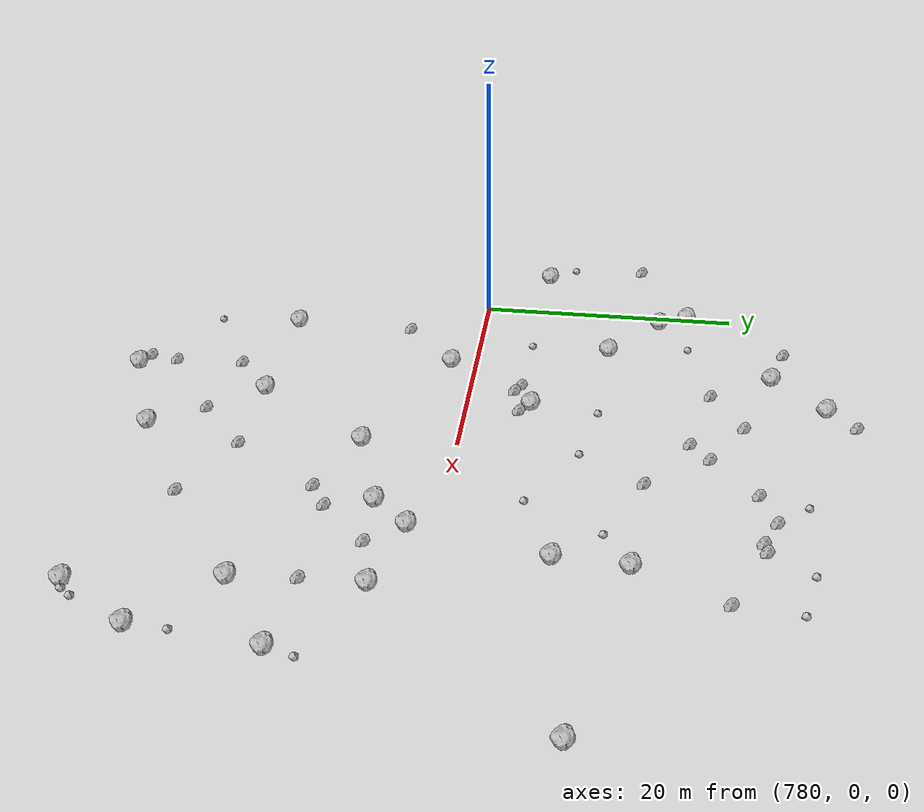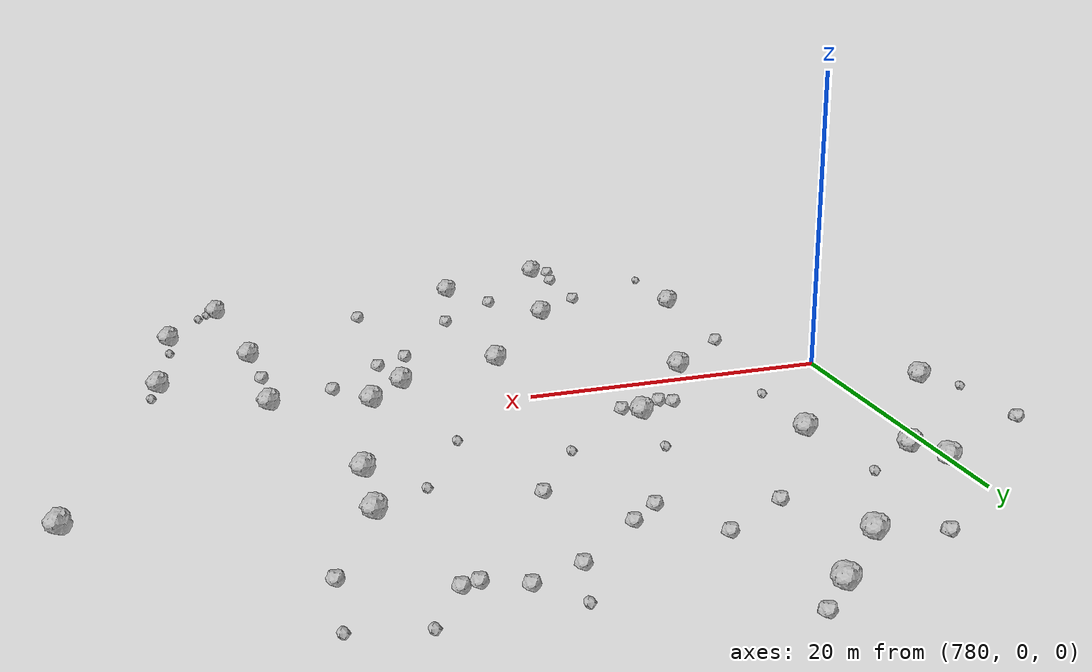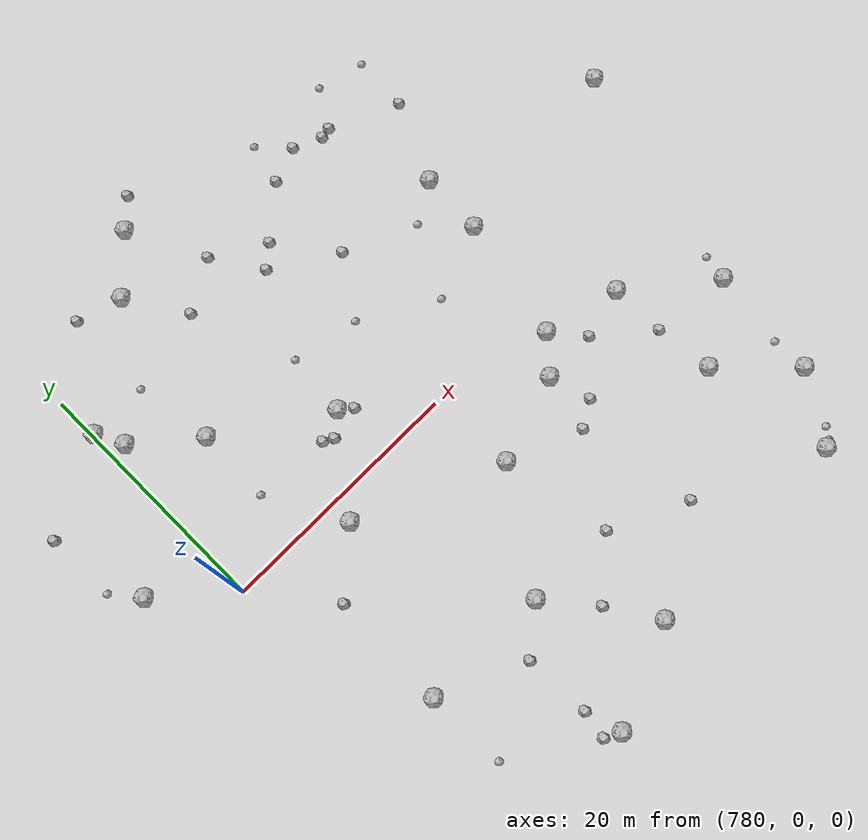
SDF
<sdf version="1.6">
 <world name="default">
  <include><uri>model://sun</uri></include>
  <model name="rock1_20_4">
   <include><uri>model://rock1</uri><pose>789.1325645402939 -1.9151805999626603 0.5 0 0 0</pose></include>
  </model>
  <model name="rock1_20_5">
   <include><uri>model://rock1</uri><pose>774.7235840795292 4.7389152806021215 0.5 0 0 0</pose></include>
  </model>
  <model name="rock1_20_6">
   <include><uri>model://rock1</uri><pose>792.1865038614771 -26.307552381752654 0.5 0 0 0</pose></include>
  </model>
  <model name="rock1_20_7">
   <include><uri>model://rock1</uri><pose>780.2549197647038 16.44700430736441 0.5 0 0 0</pose></include>
  </model>
  <model name="rock1_20_8">
   <include><uri>model://rock1</uri><pose>821.7125116380387 -17.94079884929708 0.5 0 0 0</pose></include>
  </model>
  <model name="rock1_20_9">
   <include><uri>model://rock1</uri><pose>818.0982443362032 -23.19955016938082 0.5 0 0 0</pose></include>
  </model>
  <model name="rock1_20_10">
   <include><uri>model://rock1</uri><pose>812.1942767252879 7.821086236715722 0.5 0 0 0</pose></include>
  </model>
  <model name="rock1_20_11">
   <include><uri>model://rock1</uri><pose>794.6458527756151 -15.544381893448145 0.5 0 0 0</pose></include>
  </model>
  <model name="rock1_20_12">
   <include><uri>model://rock1</uri><pose>781.385869355086 14.217819703411116 0.5 0 0 0</pose></include>
  </model>
  <model name="rock1_20_13">
   <include><uri>model://rock1</uri><pose>792.7946804061261 26.936603081943588 0.5 0 0 0</pose></include>
  </model>
  <model name="rock1_20_14">
   <include><uri>model://rock1</uri><pose>828.1257022635119 9.825498508880393 0.5 0 0 0</pose></include>
  </model>
  <model name="rock1_20_15">
   <include><uri>model://rock1</uri><pose>807.529441792622 -4.745322859811335 0.5 0 0 0</pose></include>
  </model>
  <model name="rock1_20_16">
   <include><uri>model://rock1</uri><pose>788.9052913766068 22.989709684834686 0.5 0 0 0</pose></include>
  </model>
  <model name="rock1_20_17">
   <include><uri>model://rock1</uri><pose>800.5127070582408 -6.95646554333598 0.5 0 0 0</pose></include>
  </model>
  <model name="rock1_20_18">
   <include><uri>model://rock1</uri><pose>809.9582388353541 -2.1116419579681853 0.5 0 0 0</pose></include>
  </model>
  <model name="rock1_20_19">
   <include><uri>model://rock1</uri><pose>784.4753742308492 -15.190154060510787 0.5 0 0 0</pose></include>
  </model>
  <model name="rock1_20_20">
   <include><uri>model://rock1</uri><pose>786.0543432671141 10.297260176504317 0.5 0 0 0</pose></include>
  </model>
  <model name="rock1_20_21">
   <include><uri>model://rock1</uri><pose>800.165242141347 -23.189944245079943 0.5 0 0 0</pose></include>
  </model>
  <model name="rock1_20_22">
   <include><uri>model://rock1</uri><pose>812.5198421902907 13.033787952231833 0.5 0 0 0</pose></include>
  </model>
  <model name="rock1_20_23">
   <include><uri>model://rock1</uri><pose>816.5902510496674 -12.774932367281366 0.5 0 0 0</pose></include>
  </model>
  <model name="rock1_20_24">
   <include><uri>model://rock1</uri><pose>816.1676145512527 -3.639132024983411 0.5 0 0 0</pose></include>
  </model>
  <model name="rock1_20_25">
   <include><uri>model://rock1</uri><pose>822.7028939189939 -8.831282752862418 0.5 0 0 0</pose></include>
  </model>
  <model name="rock1_20_26">
   <include><uri>model://rock1</uri><pose>794.415920611528 4.848149429760127 0.5 0 0 0</pose></include>
  </model>
  <model name="rock2_20_0">
   <include><uri>model://rock2</uri><pose>784.5893841690818 -5.855269596845815 0.3 0 0 0</pose></include>
  </model>
  <model name="rock2_20_1">
   <include><uri>model://rock2</uri><pose>790.9495572853 -25.682971544237276 0.3 0 0 0</pose></include>
  </model>
  <model name="rock2_20_2">
   <include><uri>model://rock2</uri><pose>808.0126548190667 -18.661039637371154 0.3 0 0 0</pose></include>
  </model>
  <model name="rock2_20_3">
   <include><uri>model://rock2</uri><pose>791.9080849332271 3.9126297828859435 0.3 0 0 0</pose></include>
  </model>
  <model name="rock2_20_4">
   <include><uri>model://rock2</uri><pose>797.6947938243687 -19.309444994430855 0.3 0 0 0</pose></include>
  </model>
  <model name="rock2_20_5">
   <include><uri>model://rock2</uri><pose>806.8400003738095 22.739740312521405 0.3 0 0 0</pose></include>
  </model>
  <model name="rock2_20_6">
   <include><uri>model://rock2</uri><pose>803.9062107712165 21.610767444143825 0.3 0 0 0</pose></include>
  </model>
  <model name="rock2_20_7">
   <include><uri>model://rock2</uri><pose>800.0230535283675 18.26625408698989 0.3 0 0 0</pose></include>
  </model>
  <model name="rock2_20_8">
   <include><uri>model://rock2</uri><pose>809.10399975463 21.750225612412073 0.3 0 0 0</pose></include>
  </model>
  <model name="rock2_20_9">
   <include><uri>model://rock2</uri><pose>795.7953098194745 20.785696720291533 0.3 0 0 0</pose></include>
  </model>
  <model name="rock2_20_10">
   <include><uri>model://rock2</uri><pose>791.1709340571159 -18.2449327560791 0.3 0 0 0</pose></include>
  </model>
  <model name="rock2_20_11">
   <include><uri>model://rock2</uri><pose>815.499958742675 19.49131964825356 0.3 0 0 0</pose></include>
  </model>
  <model name="rock2_20_12">
   <include><uri>model://rock2</uri><pose>810.0193627923131 21.936787270527773 0.3 0 0 0</pose></include>
  </model>
  <model name="rock2_20_13">
   <include><uri>model://rock2</uri><pose>798.2989457569263 16.824885946920773 0.3 0 0 0</pose></include>
  </model>
  <model name="rock2_20_14">
   <include><uri>model://rock2</uri><pose>803.4632842659561 13.651429404749372 0.3 0 0 0</pose></include>
  </model>
  <model name="rock2_20_15">
   <include><uri>model://rock2</uri><pose>785.1852578766109 24.09233727070491 0.3 0 0 0</pose></include>
  </model>
  <model name="rock2_20_16">
   <include><uri>model://rock2</uri><pose>792.7062476777301 3.468489100627451 0.3 0 0 0</pose></include>
  </model>
  <model name="rock2_20_17">
   <include><uri>model://rock2</uri><pose>772.8078129995783 12.567397177181924 0.3 0 0 0</pose></include>
  </model>
  <model name="rock2_20_18">
   <include><uri>model://rock2</uri><pose>811.9842595746933 -4.653351537099837 0.3 0 0 0</pose></include>
  </model>
  <model name="rock2_20_19">
   <include><uri>model://rock2</uri><pose>794.8520708514143 29.040594731465774 0.3 0 0 0</pose></include>
  </model>
  <model name="rock2_20_20">
   <include><uri>model://rock2</uri><pose>795.3919824675395 4.066027533727556 0.3 0 0 0</pose></include>
  </model>
  <model name="rock2_20_21">
   <include><uri>model://rock2</uri><pose>808.4296345498299 -8.06089028880848 0.3 0 0 0</pose></include>
  </model>
  <model name="rock2_20_22">
   <include><uri>model://rock2</uri><pose>791.3777569861132 -23.474672961605155 0.3 0 0 0</pose></include>
  </model>
  <model name="rock2_20_23">
   <include><uri>model://rock2</uri><pose>801.9407416155996 -15.759264545151714 0.3 0 0 0</pose></include>
  </model>
  <model name="rock2_20_24">
   <include><uri>model://rock2</uri><pose>816.1398449539396 -8.106947187621355 0.3 0 0 0</pose></include>
  </model>
  <model name="rock2_20_25">
   <include><uri>model://rock2</uri><pose>791.755207659002 18.340763536437848 0.3 0 0 0</pose></include>
  </model>
  <model name="rock2_20_26">
   <include><uri>model://rock2</uri><pose>806.3463104074576 -9.277685184660605 0.3 0 0 0</pose></include>
  </model>
  <model name="rock3_20_0">
   <include><uri>model://rock3</uri><pose>784.5730600245199 -21.57940210798907 0.2 0 0 0</pose></include>
  </model>
  <model name="rock3_20_1">
   <include><uri>model://rock3</uri><pose>819.3684515548579 -22.176625751969688 0.2 0 0 0</pose></include>
  </model>
  <model name="rock3_20_2">
   <include><uri>model://rock3</uri><pose>785.8446821314111 4.229183399063281 0.2 0 0 0</pose></include>
  </model>
  <model name="rock3_20_3">
   <include><uri>model://rock3</uri><pose>811.9499627310859 24.982618208686915 0.2 0 0 0</pose></include>
  </model>
  <model name="rock3_20_4">
   <include><uri>model://rock3</uri><pose>794.8569739313868 9.948398084515055 0.2 0 0 0</pose></include>
  </model>
  <model name="rock3_20_5">
   <include><uri>model://rock3</uri><pose>800.2488356027773 8.89983327941966 0.2 0 0 0</pose></include>
  </model>
  <model name="rock3_20_6">
   <include><uri>model://rock3</uri><pose>772.9343177949978 6.865631874979172 0.2 0 0 0</pose></include>
  </model>
  <model name="rock3_20_7">
   <include><uri>model://rock3</uri><pose>815.8375182777703 24.09906133520537 0.2 0 0 0</pose></include>
  </model>
  <model name="rock3_20_8">
   <include><uri>model://rock3</uri><pose>785.011412669969 16.58411020610575 0.2 0 0 0</pose></include>
  </model>
  <model name="rock3_20_9">
   <include><uri>model://rock3</uri><pose>821.6950039546548 -15.061411765413698 0.2 0 0 0</pose></include>
  </model>
  <model name="rock3_20_10">
   <include><uri>model://rock3</uri><pose>818.7409268472063 -22.99753097507073 0.2 0 0 0</pose></include>
  </model>
  <model name="rock3_20_11">
   <include><uri>model://rock3</uri><pose>806.1879968133619 5.4678423180697 0.2 0 0 0</pose></include>
  </model>
  <model name="rock3_20_12">
   <include><uri>model://rock3</uri><pose>809.225941060529 11.09978114719926 0.2 0 0 0</pose></include>
  </model>
  <model name="rock3_20_13">
   <include><uri>model://rock3</uri><pose>804.7363834093836 24.983690158112616 0.2 0 0 0</pose></include>
  </model>
  <model name="rock3_20_14">
   <include><uri>model://rock3</uri><pose>823.1279562900496 -6.784985090459735 0.2 0 0 0</pose></include>
  </model>
 </world>
</sdf>
